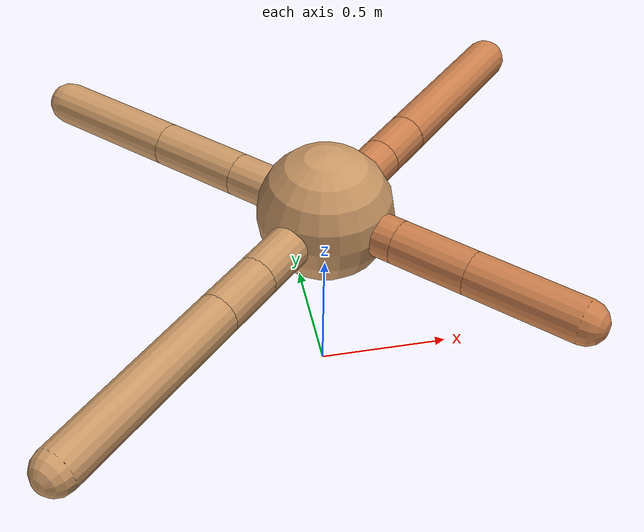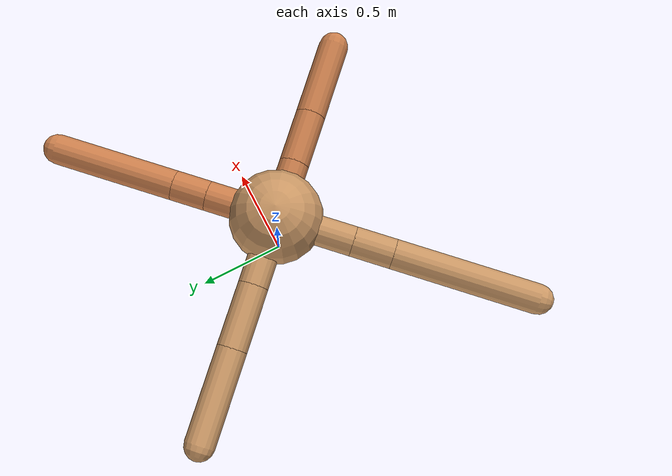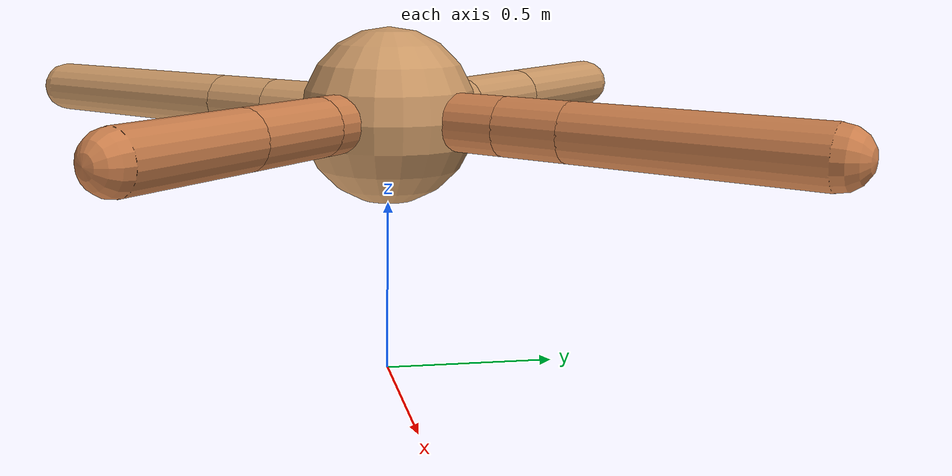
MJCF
<mujoco model="ant">
  <compiler angle="degree" coordinate="local" inertiafromgeom="true" />
  <option integrator="RK4" timestep="0.01" />
  <custom>
    <numeric data="0.0 0.0 0.55 1.0 0.0 0.0 0.0 0.0 1.0 0.0 -1.0 0.0 -1.0 0.0 1.0" name="init_qpos" />
  </custom>
  <default>
    <joint armature="1" damping="1" limited="true" />
    <geom conaffinity="0" condim="3" density="5.0" friction="1.5 0.1 0.1" margin="0.01" rgba="0.8 0.6 0.4 1" />
  </default>
  <worldbody>
    <body name="torso" pos="0 0 0.75">
      <geom name="torso_geom" pos="0 0 0" size="0.25" type="sphere" />

      <body name="front_left_leg" pos="0 0 0">
        <geom fromto="0.0 0.0 0.0 0.26692098589455937 0.26692098589455937 0.0" name="aux_1_geom" size="0.08" type="capsule" rgba=".8 .5 .3 1" />
        <body name="aux_1" pos="0.26692098589455937 0.26692098589455937 0.0">
          <joint axis="0 0 1" name="hip_1" pos="0.0 0.0 0.0" range="-40 40" type="hinge" />
          <geom fromto="0.0 0.0 0.0 0.13198913572293328 0.13198913572293328 0.0" name="left_leg_geom" size="0.08" type="capsule" rgba=".8 .5 .3 1" />
          <body pos="0.13198913572293328 0.13198913572293328 0.0" name="front_left_foot">
            <joint axis="-1 1 0" name="ankle_1" pos="0.0 0.0 0.0" range="30 100" type="hinge" />
            <geom fromto="0.0 0.0 0.0 0.46263479905763716 0.46263479905763716 0.0" name="left_ankle_geom" size="0.08" type="capsule" rgba=".8 .5 .3 1" />
          </body>
        </body>
      </body>
      <body name="front_right_leg" pos="0 0 0">
        <geom fromto="0.0 0.0 0.0 -0.270757786459979 0.270757786459979 0.0" name="aux_2_geom" size="0.08" type="capsule" />
        <body name="aux_2" pos="-0.270757786459979 0.270757786459979 0.0">
          <joint axis="0 0 1" name="hip_2" pos="0.0 0.0 0.0" range="-40 40" type="hinge" />
          <geom fromto="0.0 0.0 0.0 -0.2395741186725367 0.2395741186725367 0.0" name="right_leg_geom" size="0.08" type="capsule" />
          <body pos="-0.2395741186725367 0.2395741186725367 0.0" name="front_right_foot">
            <joint axis="1 1 0" name="ankle_2" pos="0.0 0.0 0.0" range="-100 -30" type="hinge" />
            <geom fromto="0.0 0.0 0.0 -0.35258020393407397 0.35258020393407397 0.0" name="right_ankle_geom" size="0.08" type="capsule" />
          </body>
        </body>
      </body>
      <body name="left_back_leg" pos="0 0 0">
        <geom fromto="0.0 0.0 0.0 -0.29868412702260433 -0.29868412702260433 0.0" name="aux_3_geom" size="0.08" type="capsule" />
        <body name="aux_3" pos="-0.29868412702260433 -0.29868412702260433 0.0">
          <joint axis="0 0 1" name="hip_3" pos="0.0 0.0 0.0" range="-40 40" type="hinge" />
          <geom fromto="0.0 0.0 0.0 -0.15313739534149867 -0.15313739534149867 0.0" name="back_leg_geom" size="0.08" type="capsule" />
          <body pos="-0.15313739534149867 -0.15313739534149867 0.0" name="left_back_foot">
            <joint axis="-1 1 0" name="ankle_3" pos="0.0 0.0 0.0" range="-100 -30" type="hinge" />
            <geom fromto="0.0 0.0 0.0 -0.5449536067979098 -0.5449536067979098 0.0" name="third_ankle_geom" size="0.08" type="capsule" />
          </body>
        </body>
      </body>
      <body name="right_back_leg" pos="0 0 0">
        <geom fromto="0.0 0.0 0.0 0.21557087432030056 -0.21557087432030056 0.0" name="aux_4_geom" size="0.08" type="capsule" rgba=".8 .5 .3 1" />
        <body name="aux_4" pos="0.21557087432030056 -0.21557087432030056 0.0">
          <joint axis="0 0 1" name="hip_4" pos="0.0 0.0 0.0" range="-40 40" type="hinge" />
          <geom fromto="0.0 0.0 0.0 0.20175632482091854 -0.20175632482091854 0.0" name="rightback_leg_geom" size="0.08" type="capsule" rgba=".8 .5 .3 1" />
          <body pos="0.20175632482091854 -0.20175632482091854 0.0" name="right_back_foot">
            <joint axis="1 1 0" name="ankle_4" pos="0.0 0.0 0.0" range="30 100" type="hinge" />
            <geom fromto="0.0 0.0 0.0 0.2955505312605567 -0.2955505312605567 0.0" name="fourth_ankle_geom" size="0.08" type="capsule" rgba=".8 .5 .3 1" />
          </body>
        </body>
      </body>
    </body>
  </worldbody>
  <actuator>
    <motor ctrllimited="true" ctrlrange="-1.0 1.0" joint="hip_4" gear="150" />
    <motor ctrllimited="true" ctrlrange="-1.0 1.0" joint="ankle_4" gear="150" />
    <motor ctrllimited="true" ctrlrange="-1.0 1.0" joint="hip_1" gear="150" />
    <motor ctrllimited="true" ctrlrange="-1.0 1.0" joint="ankle_1" gear="150" />
    <motor ctrllimited="true" ctrlrange="-1.0 1.0" joint="hip_2" gear="150" />
    <motor ctrllimited="true" ctrlrange="-1.0 1.0" joint="ankle_2" gear="150" />
    <motor ctrllimited="true" ctrlrange="-1.0 1.0" joint="hip_3" gear="150" />
    <motor ctrllimited="true" ctrlrange="-1.0 1.0" joint="ankle_3" gear="150" />
  </actuator>
</mujoco>
